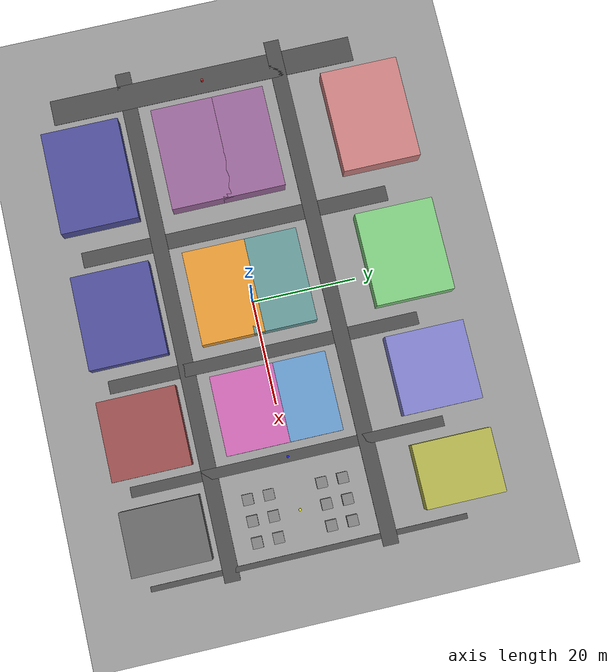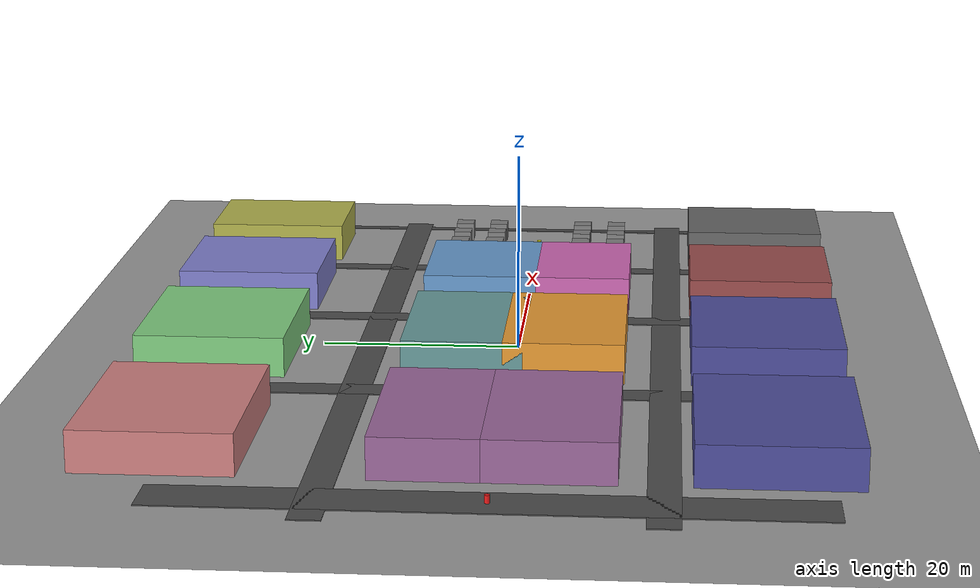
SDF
<?xml version="1.0" ?>
<sdf version="1.6">
  <world name="complex_grid_map">
    <scene>
      <ambient>0.5 0.5 0.5 1</ambient>
      <background>0.8 0.8 0.8 1</background>
      <shadows>true</shadows>
    </scene>

    <light name="sun" type="directional">
      <pose>0 0 100 0 0 0</pose>
      <diffuse>0.8 0.8 0.8 1</diffuse>
      <specular>0.2 0.2 0.2 1</specular>
      <direction>-0.5 0.1 -0.9</direction>
      <cast_shadows>true</cast_shadows>
    </light>

    <model name="ground_plane">
      <static>true</static>
      <link name="link">
        <collision name="collision">
          <geometry>
            <plane>
              <normal>0 0 1</normal>
              <size>200 200</size>
            </plane>
          </geometry>
        </collision>
        <visual name="visual">
          <geometry>
            <plane>
              <normal>0 0 1</normal>
              <size>200 200</size>
            </plane>
          </geometry>
          <material>
            <ambient>0.6 0.6 0.6 1</ambient>
            <diffuse>0.6 0.6 0.6 1</diffuse>
            <specular>0.1 0.1 0.1 1</specular>
          </material>
        </visual>
      </link>
    </model>

    <!-- ROADS -->
    <!-- Upper Cross Road (3.0m Wide) -->
    <model name="upper_cross_road">
      <static>true</static>
      <link name="link">
        <pose>0 15 0.05 0 0 0</pose>
        <collision name="collision">
          <geometry>
            <box>
              <size>100 3 0.1</size>
            </box>
          </geometry>
        </collision>
        <visual name="visual">
          <geometry>
            <box>
              <size>100 3 0.1</size>
            </box>
          </geometry>
          <material>
            <ambient>0.3 0.3 0.3 1</ambient>
            <diffuse>0.3 0.3 0.3 1</diffuse>
          </material>
        </visual>
      </link>
    </model>

    <!-- Lower Cross Road (3.0m Wide) -->
    <model name="lower_cross_road">
      <static>true</static>
      <link name="link">
        <pose>0 -15 0.05 0 0 0</pose>
        <collision name="collision">
          <geometry>
            <box>
              <size>100 3 0.1</size>
            </box>
          </geometry>
        </collision>
        <visual name="visual">
          <geometry>
            <box>
              <size>100 3 0.1</size>
            </box>
          </geometry>
          <material>
            <ambient>0.3 0.3 0.3 1</ambient>
            <diffuse>0.3 0.3 0.3 1</diffuse>
          </material>
        </visual>
      </link>
    </model>

    <!-- West Artery (5m) -->
    <model name="west_artery">
      <static>true</static>
      <link name="link">
        <pose>-45 0 0.05 0 0 0</pose>
        <collision name="collision">
          <geometry>
            <box>
              <size>5 60 0.1</size>
            </box>
          </geometry>
        </collision>
        <visual name="visual">
          <geometry>
            <box>
              <size>5 60 0.1</size>
            </box>
          </geometry>
          <material>
            <ambient>0.3 0.3 0.3 1</ambient>
            <diffuse>0.3 0.3 0.3 1</diffuse>
          </material>
        </visual>
      </link>
    </model>

    <!-- Mid-West Road (3m) -->
    <model name="mid_west_road">
      <static>true</static>
      <link name="link">
        <pose>-15 0 0.05 0 0 0</pose>
        <collision name="collision">
          <geometry>
            <box>
              <size>3 60 0.1</size>
            </box>
          </geometry>
        </collision>
        <visual name="visual">
          <geometry>
            <box>
              <size>3 60 0.1</size>
            </box>
          </geometry>
          <material>
            <ambient>0.3 0.3 0.3 1</ambient>
            <diffuse>0.3 0.3 0.3 1</diffuse>
          </material>
        </visual>
      </link>
    </model>

    <!-- Center Road (2.5m) -->
    <model name="center_road">
      <static>true</static>
      <link name="link">
        <pose>10 0 0.05 0 0 0</pose>
        <collision name="collision">
          <geometry>
            <box>
              <size>2.5 60 0.1</size>
            </box>
          </geometry>
        </collision>
        <visual name="visual">
          <geometry>
            <box>
              <size>2.5 60 0.1</size>
            </box>
          </geometry>
          <material>
            <ambient>0.3 0.3 0.3 1</ambient>
            <diffuse>0.3 0.3 0.3 1</diffuse>
          </material>
        </visual>
      </link>
    </model>

    <!-- Mid-East Road (2m) -->
    <model name="mid_east_road">
      <static>true</static>
      <link name="link">
        <pose>30 0 0.05 0 0 0</pose>
        <collision name="collision">
          <geometry>
            <box>
              <size>2 60 0.1</size>
            </box>
          </geometry>
        </collision>
        <visual name="visual">
          <geometry>
            <box>
              <size>2 60 0.1</size>
            </box>
          </geometry>
          <material>
            <ambient>0.3 0.3 0.3 1</ambient>
            <diffuse>0.3 0.3 0.3 1</diffuse>
          </material>
        </visual>
      </link>
    </model>

    <!-- East Alley (1m) -->
    <model name="east_alley">
      <static>true</static>
      <link name="link">
        <pose>48 0 0.05 0 0 0</pose>
        <collision name="collision">
          <geometry>
            <box>
              <size>1 60 0.1</size>
            </box>
          </geometry>
        </collision>
        <visual name="visual">
          <geometry>
            <box>
              <size>1 60 0.1</size>
            </box>
          </geometry>
          <material>
            <ambient>0.3 0.3 0.3 1</ambient>
            <diffuse>0.3 0.3 0.3 1</diffuse>
          </material>
        </visual>
      </link>
    </model>

    <!-- BLOCK A (Engineering) -->
    <model name="block_a">
      <static>true</static>
      <link name="link">
        <pose>-30 30 2 0 0 0</pose>
        <collision name="collision">
          <geometry>
            <box>
              <size>20 15 4</size>
            </box>
          </geometry>
        </collision>
        <visual name="visual">
          <geometry>
            <box>
              <size>20 15 4</size>
            </box>
          </geometry>
          <material>
            <ambient>0.8 0.5 0.5 1</ambient>
            <diffuse>0.8 0.5 0.5 1</diffuse>
          </material>
        </visual>
      </link>
    </model>

    <!-- BLOCK B (Sciences) -->
    <model name="block_b">
      <static>true</static>
      <link name="link">
        <pose>-2.5 30 2 0 0 0</pose>
        <collision name="collision">
          <geometry>
            <box>
              <size>18 15 4</size>
            </box>
          </geometry>
        </collision>
        <visual name="visual">
          <geometry>
            <box>
              <size>18 15 4</size>
            </box>
          </geometry>
          <material>
            <ambient>0.5 0.8 0.5 1</ambient>
            <diffuse>0.5 0.8 0.5 1</diffuse>
          </material>
        </visual>
      </link>
    </model>

    <!-- BLOCK C (Research) -->
    <model name="block_c">
      <static>true</static>
      <link name="link">
        <pose>20 30 2 0 0 0</pose>
        <collision name="collision">
          <geometry>
            <box>
              <size>15 15 4</size>
            </box>
          </geometry>
        </collision>
        <visual name="visual">
          <geometry>
            <box>
              <size>15 15 4</size>
            </box>
          </geometry>
          <material>
            <ambient>0.5 0.5 0.8 1</ambient>
            <diffuse>0.5 0.5 0.8 1</diffuse>
          </material>
        </visual>
      </link>
    </model>

    <!-- BLOCK D (HVAC) -->
    <model name="block_d">
      <static>true</static>
      <link name="link">
        <pose>39 30 2 0 0 0</pose>
        <collision name="collision">
          <geometry>
            <box>
              <size>12 15 4</size>
            </box>
          </geometry>
        </collision>
        <visual name="visual">
          <geometry>
            <box>
              <size>12 15 4</size>
            </box>
          </geometry>
          <material>
            <ambient>0.7 0.7 0.3 1</ambient>
            <diffuse>0.7 0.7 0.3 1</diffuse>
          </material>
        </visual>
      </link>
    </model>

    <!-- BLOCK E1 (Lecture N) -->
    <model name="block_e1">
      <static>true</static>
      <link name="link">
        <pose>-30 5 2 0 0 0</pose>
        <collision name="collision">
          <geometry>
            <box>
              <size>20 12 4</size>
            </box>
          </geometry>
        </collision>
        <visual name="visual">
          <geometry>
            <box>
              <size>20 12 4</size>
            </box>
          </geometry>
          <material>
            <ambient>0.6 0.4 0.6 1</ambient>
            <diffuse>0.6 0.4 0.6 1</diffuse>
          </material>
        </visual>
      </link>
    </model>

    <!-- BLOCK E2 (Lecture S) -->
    <model name="block_e2">
      <static>true</static>
      <link name="link">
        <pose>-30 -5 2 0 0 0</pose>
        <collision name="collision">
          <geometry>
            <box>
              <size>20 12 4</size>
            </box>
          </geometry>
        </collision>
        <visual name="visual">
          <geometry>
            <box>
              <size>20 12 4</size>
            </box>
          </geometry>
          <material>
            <ambient>0.6 0.4 0.6 1</ambient>
            <diffuse>0.6 0.4 0.6 1</diffuse>
          </material>
        </visual>
      </link>
    </model>

    <!-- BLOCK F (Library) -->
    <model name="block_f">
      <static>true</static>
      <link name="link">
        <pose>-2.5 5 2 0 0 0</pose>
        <collision name="collision">
          <geometry>
            <box>
              <size>18 12 4</size>
            </box>
          </geometry>
        </collision>
        <visual name="visual">
          <geometry>
            <box>
              <size>18 12 4</size>
            </box>
          </geometry>
          <material>
            <ambient>0.4 0.6 0.6 1</ambient>
            <diffuse>0.4 0.6 0.6 1</diffuse>
          </material>
        </visual>
      </link>
    </model>

    <!-- BLOCK G2/Central Plaza Logic is handled as G2 below F -->
    <model name="block_g2">
      <static>true</static>
      <link name="link">
        <pose>-2.5 -5 2 0 0 0</pose>
        <collision name="collision">
          <geometry>
            <box>
              <size>18 12 4</size>
            </box>
          </geometry>
        </collision>
        <visual name="visual">
          <geometry>
            <box>
              <size>18 12 4</size>
            </box>
          </geometry>
          <material>
            <ambient>0.9 0.6 0.2 1</ambient>
            <diffuse>0.9 0.6 0.2 1</diffuse>
          </material>
        </visual>
      </link>
    </model>

    <!-- BLOCK G1 (IT Services) -->
    <model name="block_g1">
      <static>true</static>
      <link name="link">
        <pose>20 5 2 0 0 0</pose>
        <collision name="collision">
          <geometry>
            <box>
              <size>15 12 4</size>
            </box>
          </geometry>
        </collision>
        <visual name="visual">
          <geometry>
            <box>
              <size>15 12 4</size>
            </box>
          </geometry>
          <material>
            <ambient>0.4 0.6 0.8 1</ambient>
            <diffuse>0.4 0.6 0.8 1</diffuse>
          </material>
        </visual>
      </link>
    </model>

    <!-- BLOCK G3 (Student Ctr) -->
    <model name="block_g3">
      <static>true</static>
      <link name="link">
        <pose>20 -5 2 0 0 0</pose>
        <collision name="collision">
          <geometry>
            <box>
              <size>15 12 4</size>
            </box>
          </geometry>
        </collision>
        <visual name="visual">
          <geometry>
            <box>
              <size>15 12 4</size>
            </box>
          </geometry>
          <material>
            <ambient>0.8 0.4 0.7 1</ambient>
            <diffuse>0.8 0.4 0.7 1</diffuse>
          </material>
        </visual>
      </link>
    </model>

    <!-- WARREN NORTH (Dense Grid of Small Blocks) -->
    <!-- 3x2 grid of small 2x2 blocks -->
    <model name="warren_n_1">
      <static>true</static>
      <link name="link">
        <pose>36 5 1 0 0 0</pose>
        <collision name="collision"><geometry><box><size>2 2 2</size></box></geometry></collision>
        <visual name="visual"><geometry><box><size>2 2 2</size></box></geometry>
        <material><ambient>0.5 0.5 0.5 1</ambient><diffuse>0.5 0.5 0.5 1</diffuse></material></visual>
      </link>
    </model>
    <model name="warren_n_2">
      <static>true</static>
      <link name="link">
        <pose>40 5 1 0 0 0</pose>
        <collision name="collision"><geometry><box><size>2 2 2</size></box></geometry></collision>
        <visual name="visual"><geometry><box><size>2 2 2</size></box></geometry>
        <material><ambient>0.5 0.5 0.5 1</ambient><diffuse>0.5 0.5 0.5 1</diffuse></material></visual>
      </link>
    </model>
    <model name="warren_n_3">
      <static>true</static>
      <link name="link">
        <pose>44 5 1 0 0 0</pose>
        <collision name="collision"><geometry><box><size>2 2 2</size></box></geometry></collision>
        <visual name="visual"><geometry><box><size>2 2 2</size></box></geometry>
        <material><ambient>0.5 0.5 0.5 1</ambient><diffuse>0.5 0.5 0.5 1</diffuse></material></visual>
      </link>
    </model>
    <model name="warren_n_4">
      <static>true</static>
      <link name="link">
        <pose>36 9 1 0 0 0</pose>
        <collision name="collision"><geometry><box><size>2 2 2</size></box></geometry></collision>
        <visual name="visual"><geometry><box><size>2 2 2</size></box></geometry>
        <material><ambient>0.5 0.5 0.5 1</ambient><diffuse>0.5 0.5 0.5 1</diffuse></material></visual>
      </link>
    </model>
    <model name="warren_n_5">
      <static>true</static>
      <link name="link">
        <pose>40 9 1 0 0 0</pose>
        <collision name="collision"><geometry><box><size>2 2 2</size></box></geometry></collision>
        <visual name="visual"><geometry><box><size>2 2 2</size></box></geometry>
        <material><ambient>0.5 0.5 0.5 1</ambient><diffuse>0.5 0.5 0.5 1</diffuse></material></visual>
      </link>
    </model>
    <model name="warren_n_6">
      <static>true</static>
      <link name="link">
        <pose>44 9 1 0 0 0</pose>
        <collision name="collision"><geometry><box><size>2 2 2</size></box></geometry></collision>
        <visual name="visual"><geometry><box><size>2 2 2</size></box></geometry>
        <material><ambient>0.5 0.5 0.5 1</ambient><diffuse>0.5 0.5 0.5 1</diffuse></material></visual>
      </link>
    </model>

    <!-- WARREN SOUTH (Dense Grid of Small Blocks) -->
    <model name="warren_s_1">
      <static>true</static>
      <link name="link">
        <pose>36 -5 1 0 0 0</pose>
        <collision name="collision"><geometry><box><size>2 2 2</size></box></geometry></collision>
        <visual name="visual"><geometry><box><size>2 2 2</size></box></geometry>
        <material><ambient>0.5 0.5 0.5 1</ambient><diffuse>0.5 0.5 0.5 1</diffuse></material></visual>
      </link>
    </model>
    <model name="warren_s_2">
      <static>true</static>
      <link name="link">
        <pose>40 -5 1 0 0 0</pose>
        <collision name="collision"><geometry><box><size>2 2 2</size></box></geometry></collision>
        <visual name="visual"><geometry><box><size>2 2 2</size></box></geometry>
        <material><ambient>0.5 0.5 0.5 1</ambient><diffuse>0.5 0.5 0.5 1</diffuse></material></visual>
      </link>
    </model>
    <model name="warren_s_3">
      <static>true</static>
      <link name="link">
        <pose>44 -5 1 0 0 0</pose>
        <collision name="collision"><geometry><box><size>2 2 2</size></box></geometry></collision>
        <visual name="visual"><geometry><box><size>2 2 2</size></box></geometry>
        <material><ambient>0.5 0.5 0.5 1</ambient><diffuse>0.5 0.5 0.5 1</diffuse></material></visual>
      </link>
    </model>
    <model name="warren_s_4">
      <static>true</static>
      <link name="link">
        <pose>36 -9 1 0 0 0</pose>
        <collision name="collision"><geometry><box><size>2 2 2</size></box></geometry></collision>
        <visual name="visual"><geometry><box><size>2 2 2</size></box></geometry>
        <material><ambient>0.5 0.5 0.5 1</ambient><diffuse>0.5 0.5 0.5 1</diffuse></material></visual>
      </link>
    </model>
    <model name="warren_s_5">
      <static>true</static>
      <link name="link">
        <pose>40 -9 1 0 0 0</pose>
        <collision name="collision"><geometry><box><size>2 2 2</size></box></geometry></collision>
        <visual name="visual"><geometry><box><size>2 2 2</size></box></geometry>
        <material><ambient>0.5 0.5 0.5 1</ambient><diffuse>0.5 0.5 0.5 1</diffuse></material></visual>
      </link>
    </model>
    <model name="warren_s_6">
      <static>true</static>
      <link name="link">
        <pose>44 -9 1 0 0 0</pose>
        <collision name="collision"><geometry><box><size>2 2 2</size></box></geometry></collision>
        <visual name="visual"><geometry><box><size>2 2 2</size></box></geometry>
        <material><ambient>0.5 0.5 0.5 1</ambient><diffuse>0.5 0.5 0.5 1</diffuse></material></visual>
      </link>
    </model>

    <!-- BLOCK H1 (Admin West) -->
    <model name="block_h1">
      <static>true</static>
      <link name="link">
        <pose>-30 -25 2 0 0 0</pose>
        <collision name="collision">
          <geometry>
            <box>
              <size>20 15 4</size>
            </box>
          </geometry>
        </collision>
        <visual name="visual">
          <geometry>
            <box>
              <size>20 15 4</size>
            </box>
          </geometry>
          <material>
            <ambient>0.3 0.3 0.6 1</ambient>
            <diffuse>0.3 0.3 0.6 1</diffuse>
          </material>
        </visual>
      </link>
    </model>

    <!-- BLOCK H2 (Admin East) -->
    <model name="block_h2">
      <static>true</static>
      <link name="link">
        <pose>-2.5 -25 2 0 0 0</pose>
        <collision name="collision">
          <geometry>
            <box>
              <size>18 15 4</size>
            </box>
          </geometry>
        </collision>
        <visual name="visual">
          <geometry>
            <box>
              <size>18 15 4</size>
            </box>
          </geometry>
          <material>
            <ambient>0.3 0.3 0.6 1</ambient>
            <diffuse>0.3 0.3 0.6 1</diffuse>
          </material>
        </visual>
      </link>
    </model>

    <!-- BLOCK H3 (Auditorium) -->
    <model name="block_h3">
      <static>true</static>
      <link name="link">
        <pose>20 -25 2 0 0 0</pose>
        <collision name="collision">
          <geometry>
            <box>
              <size>15 15 4</size>
            </box>
          </geometry>
        </collision>
        <visual name="visual">
          <geometry>
            <box>
              <size>15 15 4</size>
            </box>
          </geometry>
          <material>
            <ambient>0.6 0.3 0.3 1</ambient>
            <diffuse>0.6 0.3 0.3 1</diffuse>
          </material>
        </visual>
      </link>
    </model>

    <!-- BLOCK H4 (Maintenance) -->
    <model name="block_h4">
      <static>true</static>
      <link name="link">
        <pose>39 -25 2 0 0 0</pose>
        <collision name="collision">
          <geometry>
            <box>
              <size>12 15 4</size>
            </box>
          </geometry>
        </collision>
        <visual name="visual">
          <geometry>
            <box>
              <size>12 15 4</size>
            </box>
          </geometry>
          <material>
            <ambient>0.4 0.4 0.4 1</ambient>
            <diffuse>0.4 0.4 0.4 1</diffuse>
          </material>
        </visual>
      </link>
    </model>

    <!-- MOVING HUMANS -->
    <!-- Humans for complex navigation scenarios -->
    <model name="human_moving_1">
      <static>false</static>
      <pose>-45 0 0 0 0 0</pose>
      <link name="link">
        <inertial>
          <mass>60.0</mass>
          <inertia>
            <ixx>1</ixx>
            <iyy>1</iyy>
            <izz>1</izz>
          </inertia>
        </inertial>
        <collision name="collision">
          <geometry>
            <cylinder>
              <radius>0.25</radius>
              <length>1.7</length>
            </cylinder>
          </geometry>
        </collision>
        <visual name="visual">
          <geometry>
            <cylinder>
              <radius>0.25</radius>
              <length>1.7</length>
            </cylinder>
          </geometry>
          <material>
            <ambient>0.9 0.1 0.1 1</ambient>
            <diffuse>0.9 0.1 0.1 1</diffuse>
            <specular>0.2 0.2 0.2 1</specular>
          </material>
        </visual>
      </link>
    </model>

    <model name="human_moving_2">
      <static>false</static>
      <pose>10 0 0 0 0 0</pose>
      <link name="link">
        <inertial>
          <mass>60.0</mass>
          <inertia>
            <ixx>1</ixx>
            <iyy>1</iyy>
            <izz>1</izz>
          </inertia>
        </inertial>
        <collision name="collision">
          <geometry>
            <cylinder>
              <radius>0.25</radius>
              <length>1.7</length>
            </cylinder>
          </geometry>
        </collision>
        <visual name="visual">
          <geometry>
            <cylinder>
              <radius>0.25</radius>
              <length>1.7</length>
            </cylinder>
          </geometry>
          <material>
            <ambient>0.1 0.9 0.1 1</ambient>
            <diffuse>0.1 0.9 0.1 1</diffuse>
            <specular>0.2 0.2 0.2 1</specular>
          </material>
        </visual>
      </link>
    </model>

    <model name="human_moving_3">
      <static>false</static>
      <pose>30 0 0 0 0 0</pose>
      <link name="link">
        <inertial>
          <mass>60.0</mass>
          <inertia>
            <ixx>1</ixx>
            <iyy>1</iyy>
            <izz>1</izz>
          </inertia>
        </inertial>
        <collision name="collision">
          <geometry>
            <cylinder>
              <radius>0.25</radius>
              <length>1.7</length>
            </cylinder>
          </geometry>
        </collision>
        <visual name="visual">
          <geometry>
            <cylinder>
              <radius>0.25</radius>
              <length>1.7</length>
            </cylinder>
          </geometry>
          <material>
            <ambient>0.1 0.1 0.9 1</ambient>
            <diffuse>0.1 0.1 0.9 1</diffuse>
            <specular>0.2 0.2 0.2 1</specular>
          </material>
        </visual>
      </link>
    </model>

    <model name="human_moving_4">
      <static>false</static>
      <pose>40 0 0 0 0 0</pose>
      <link name="link">
        <inertial>
          <mass>60.0</mass>
          <inertia>
            <ixx>1</ixx>
            <iyy>1</iyy>
            <izz>1</izz>
          </inertia>
        </inertial>
        <collision name="collision">
          <geometry>
            <cylinder>
              <radius>0.25</radius>
              <length>1.7</length>
            </cylinder>
          </geometry>
        </collision>
        <visual name="visual">
          <geometry>
            <cylinder>
              <radius>0.25</radius>
              <length>1.7</length>
            </cylinder>
          </geometry>
          <material>
            <ambient>0.9 0.9 0.1 1</ambient>
            <diffuse>0.9 0.9 0.1 1</diffuse>
            <specular>0.2 0.2 0.2 1</specular>
          </material>
        </visual>
      </link>
    </model>

  </world>
</sdf>
